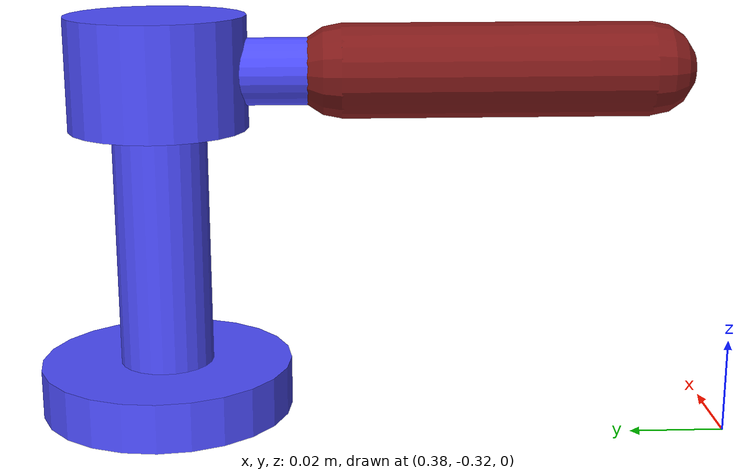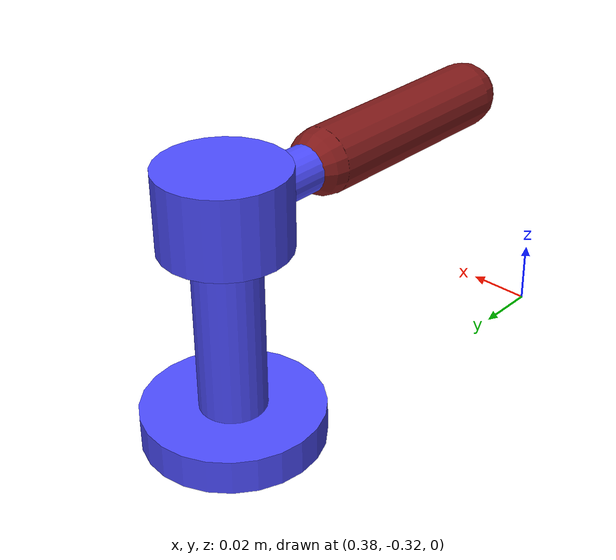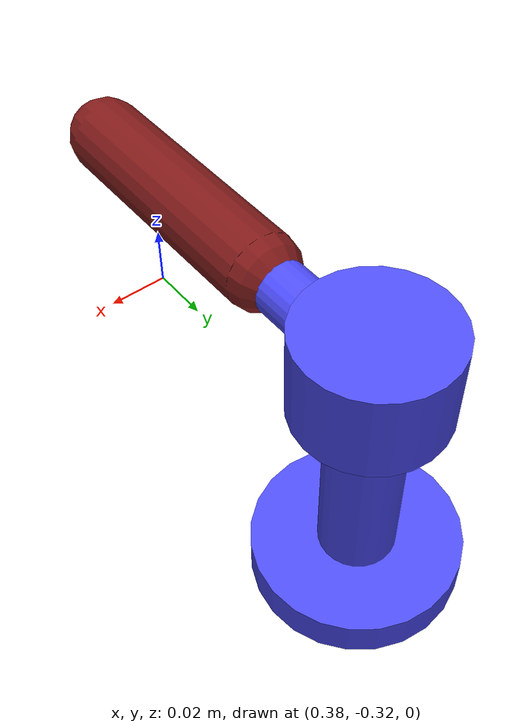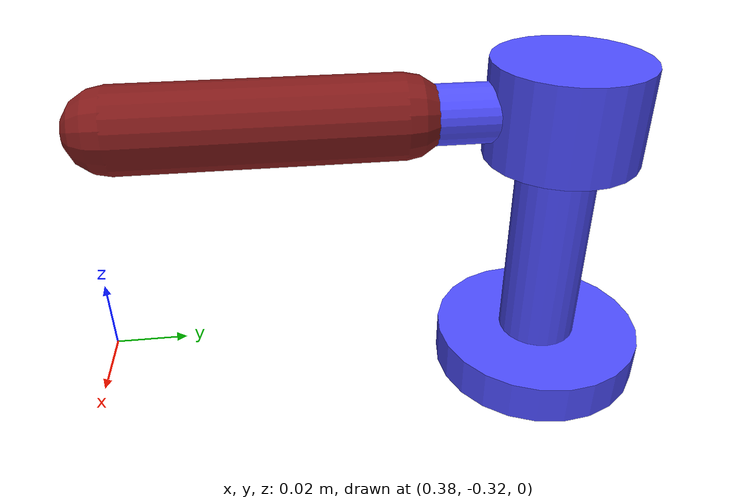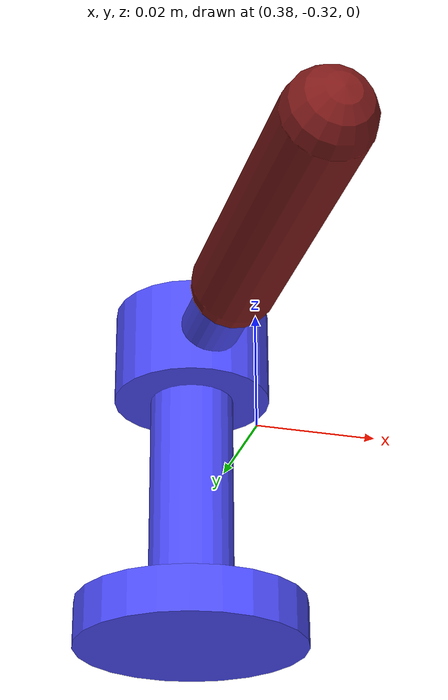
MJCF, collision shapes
<mujoco model="faucet">
    <compiler angle="radian" inertiafromgeom="auto" inertiagrouprange="1 5"/>

    <asset>
        <texture name="T_fauc_met" type="cube" file="textures/metal2.png"/>

        <material name="faucet_col" rgba="0.3 0.3 1.0 0.5" shininess="0" specular="0"/>
        <material name="faucet_handle" rgba=".5 .1 .1 1" shininess="1" reflectance=".7" specular=".5"/>
        <material name="faucet_body" rgba=".7 .7 .7 1" texture="T_fauc_met" shininess="1" reflectance="1" specular=".5"/>
    </asset>

    <default>
        <default class="faucet_base">
            <joint armature="0.001" damping="2" limited="true"/>
            <geom conaffinity="0" contype="0" group="1" type="mesh"/>
            <position ctrllimited="true" ctrlrange="0 1.57"/>
            <default class="faucet_viz">
                <geom condim="4" type="mesh"/>
            </default>
            <default class="faucet_col">
                <geom conaffinity="1" condim="3" contype="1" group="4" material="faucet_col" solimp="0.99 0.99 0.01" solref="0.01 1"/>
            </default>
            <site type="sphere" size=".01" rgba="0 1 0 1" group="5"/>
        </default>
    </default>

    <asset>
        <mesh file="metaworld/faucet/faucetbase.stl" name="faucetbase" scale="0.6 0.6 0.6"/>
        <mesh file="metaworld/faucet/faucethandle1.stl" name="faucethandle1" scale="0.6 0.6 0.6"/>
        <mesh file="metaworld/faucet/faucethead.stl" name="faucethead" scale="0.6 0.6 0.6"/>
    </asset>

    <worldbody>
        <body childclass="faucet_base" name="faucet_base" pos="0.4 -0.2 0.0">
            <!-- Static base geoms (scaled 0.6x) -->
            <geom material="faucet_body" mesh="faucetbase" pos="0 0 0.053"/>
            <geom class="faucet_col" pos="0 0 0.0054" size="0.0276 0.0054" type="cylinder"/>
            <geom class="faucet_col" pos="0 0 0.0366" size="0.0102 0.0264" type="cylinder"/>

            <!-- Virtual handle for target visualization -->
            <body name="faucet_link_virtual" pos="0 0 0.0744">
                <body name="faucet_link_virtual_handle" pos="0 -0.105 0">
                    <site name="faucet_handle_center_target" pos="0 0 0.0001" group="5"/>
                </body>
            </body>

            <!-- Movable knob body -->
            <body name="faucet_link" pos="0 0 0.0744">
                <site name="faucet_handle_center" pos="0 -0.105 0" group="5"/>
                <joint name="faucet_knob" type="hinge" range="-1.57 1.57" axis="0 0 1"/>
                <geom material="faucet_body" euler="1.57 0 0" mesh="faucethandle1" pos="0 -0.036 0.0006"/>
                <geom material="faucet_body" mesh="faucethead" pos="0 0 0.0006"/>
                <geom material="faucet_handle" euler="1.57 0 0" pos="0 -0.072 0.0006" size="0.0102 0.033" type="capsule" name="faucet_handle_geom"/>

                <geom class="faucet_col" euler="1.57 0 0" pos="0 -0.03 0.0006" size="0.0072 0.0126" type="cylinder"/>
                <geom class="faucet_col" euler="1.57 0 0" pos="0 -0.072 0.0006" size="0.0102 0.033" type="capsule"/>
                <geom class="faucet_col" pos="0 0 0.0006" size="0.0192 0.012" type="cylinder"/>
            </body>
        </body>
    </worldbody>
</mujoco>
